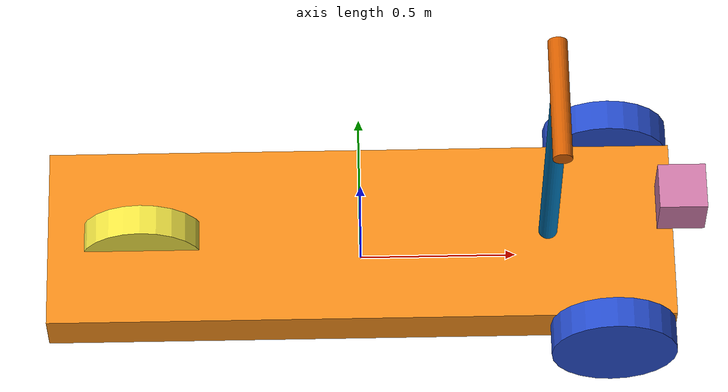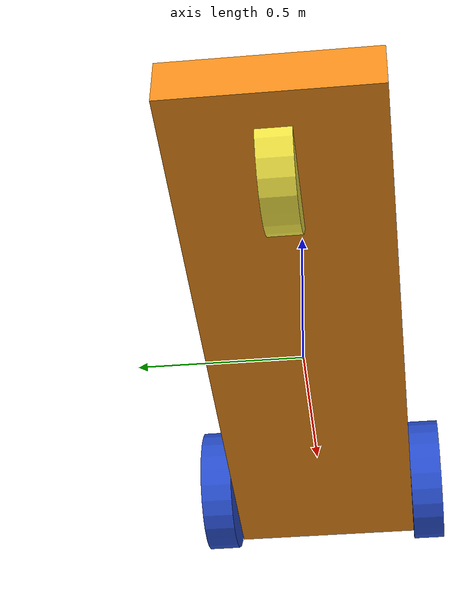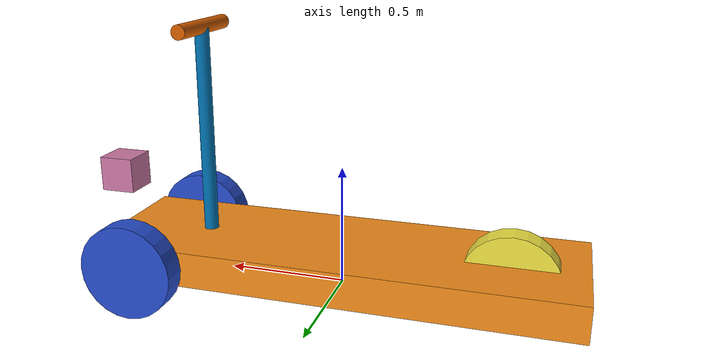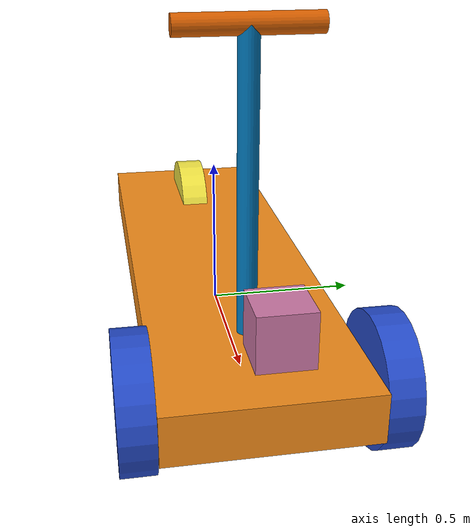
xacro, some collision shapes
<?xml version='1.0'?>

<robot name="myrobot" xmlns:xacro="http://www.ros.org/wiki/xacro">

  <xacro:include filename="$(find mybot_description)/urdf/mybot.gazebo" />
  <xacro:include filename="$(find mybot_description)/urdf/materials.xacro" />
  <xacro:include filename="$(find mybot_description)/urdf/macros.xacro" />

  <link name='chassis'>
    <pose>0 0 0.1 0 0 0</pose>

    <inertial>
      <mass value="30.0"/>
      <origin xyz="0 0 0.1" rpy=" 0 0 0"/>
      <inertia
          ixx="0.1" ixy="0" ixz="0"
          iyy="0.1" iyz="0"
          izz="0.1"
      />
    </inertial>

    <collision name='collision'>
      <geometry>
        <box size="2 0.6 0.15"/>
      </geometry>
    </collision>

    <visual name='chassis_visual'>
      <origin xyz="0 0 0.1" rpy=" 0 0 0"/>
      <geometry>
        <box size="2 0.6 0.15"/>
      </geometry>
    </visual>
  </link>

  <link name="left_wheel">
    <!--origin xyz="0.1 0.13 0.1" rpy="0 1.5707 1.5707"/-->
    <collision name="collision">
      <origin xyz="0 0 0" rpy="0 1.5707 1.5707"/>
      <geometry>
        <cylinder radius="0.2" length="0.1"/>
      </geometry>
    </collision>
    <visual name="left_wheel_visual">
      <origin xyz="0 0 0" rpy="0 1.5707 1.5707"/>
      <geometry>
        <cylinder radius="0.2" length="0.1"/>
      </geometry>
    </visual>
    <inertial>
      <origin xyz="0 0 0" rpy="0 1.5707 1.5707"/>
      <mass value="5"/>
      <inertia
        ixx=".1" ixy="0.0" ixz="0.0"
        iyy=".1" iyz="0.0"
        izz=".1"/>
    </inertial>
  </link>

  <link name="right_wheel">
    <!--origin xyz="0.1 -0.13 0.1" rpy="0 1.5707 1.5707"/-->
    <collision name="collision">
      <origin xyz="0 0 0" rpy="0 1.5707 1.5707"/>
      <geometry>
        <cylinder radius="0.2" length="0.1"/>
      </geometry>
    </collision>
    <visual name="right_wheel_visual">
      <origin xyz="0 0 0" rpy="0 1.5707 1.5707"/>
      <geometry>
        <cylinder radius="0.2" length="0.1"/>
      </geometry>
    </visual>
    <inertial>
      <origin xyz="0 0 0" rpy="0 1.5707 1.5707"/>
      <mass value="5"/>
      <inertia
        ixx=".1" ixy="0.0" ixz="0.0"
        iyy=".1" iyz="0.0"
        izz=".1"/>
    </inertial>
  </link>

<link name="rear_wheel">
    <!--origin xyz="0.1 -0.13 0.1" rpy="0 1.5707 1.5707"/-->
    <collision name="collision">
      <origin xyz="0 0 0" rpy="0 1.5707 1.5707"/>
      <geometry>
        <cylinder radius="0.2" length="0.1"/>
      </geometry>
    </collision>
    <visual name="right_wheel_visual">
      <origin xyz="0 0 0" rpy="0 1.5707 1.5707"/>
      <geometry>
        <cylinder radius="0.2" length="0.1"/>
      </geometry>
    </visual>
    <inertial>
      <origin xyz="0 0 0" rpy="0 1.5707 1.5707"/>
      <mass value="5"/>
      <inertia
        ixx=".1" ixy="0.0" ixz="0.0"
        iyy=".1" iyz="0.0"
        izz=".1"/>
    </inertial>
  </link>

  <joint type="continuous" name="rear_wheel_hinge">
    <origin xyz="-0.7 0 0.1" rpy="0 0 0"/>
    <!--origin xyz="0.1 0.13 0" rpy="0 1.5707 1.5707"/-->
    <child link="rear_wheel"/>
    <parent link="chassis"/>
    <axis xyz="0 1 0" rpy="0 0 0"/>
    <limit effort="10000" velocity="1000"/>
    <joint_properties damping="1.0" friction="1.0"/>
  </joint>

  <joint type="continuous" name="left_wheel_hinge">
    <origin xyz="0.8 0.35 0.1" rpy="0 0 0"/>
    <!--origin xyz="0.1 0.13 0" rpy="0 1.5707 1.5707"/-->
    <child link="left_wheel"/>
    <parent link="chassis"/>
    <axis xyz="0 1 0" rpy="0 0 0"/>
    <limit effort="10000" velocity="1000"/>
    <joint_properties damping="1.0" friction="1.0"/>
  </joint>

  <joint type="continuous" name="right_wheel_hinge">
    <origin xyz="0.8 -0.35 0.1" rpy="0 0 0"/>
    <!--origin xyz="0.1 -0.13 0" rpy="0 1.5707 1.5707"/-->
    <child link="right_wheel"/>
    <parent link="chassis"/>
    <axis xyz="0 1 0" rpy="0 0 0"/>
    <limit effort="10000" velocity="1000"/>
    <joint_properties damping="1.0" friction="1.0"/>
  </joint>

<link name="stem">
    <!--origin xyz="0.1 -0.13 0.1" rpy="0 1.5707 1.5707"/-->
    <collision name="stem_">
      <origin xyz="0 0 0" rpy="0 0 0"/>
      <geometry>
        <cylinder radius="0.03" length="1"/>
      </geometry>
    </collision>
    <visual name="stem_visual">
      <origin xyz="0 0 0" rpy="0 0 0"/>
      <geometry>
        <cylinder radius="0.03" length="1"/>
      </geometry>
    </visual>
    <inertial>
      <origin xyz="0 0 0" rpy="0 0 0"/>
      <mass value="5"/>
      <inertia
        ixx=".1" ixy="0.0" ixz="0.0"
        iyy=".1" iyz="0.0"
        izz=".1"/>
    </inertial>
  </link>

  <joint type="fixed" name="stem_hinge">
    <origin xyz="0.6 0 0.55" rpy="0 0 0"/>
    <!--origin xyz="0.1 0.13 0" rpy="0 1.5707 1.5707"/-->
    <child link="stem"/>
    <parent link="chassis"/>
    <axis xyz="0 1 0" rpy="0 0 0"/>
    <limit effort="10000" velocity="1000"/>
    <joint_properties damping="1.0" friction="1.0"/>
  </joint>

<link name="handle">
    <!--origin xyz="0.1 -0.13 0.1" rpy="0 1.5707 1.5707"/-->
    <collision name="handlestem_">
      <origin xyz="0 0 0" rpy="0 1.5707 1.5707"/>
      <geometry>
        <cylinder radius="0.03" length="0.4"/>
      </geometry>
    </collision>
    <visual name="stem_visual">
      <origin xyz="0 0 0" rpy="0 1.5707 1.5707"/>
      <geometry>
        <cylinder radius="0.03" length="0.4"/>
      </geometry>
    </visual>
    <inertial>
      <origin xyz="0 0 0" rpy="0 1.5707 1.5707"/>
      <mass value="5"/>
      <inertia
        ixx=".1" ixy="0.0" ixz="0.0"
        iyy=".1" iyz="0.0"
        izz=".1"/>
    </inertial>
  </link>

  <joint type="fixed" name="handle_hinge">
    <origin xyz="0 0 0.5" rpy="1.5707 1.5707 1.5707"/>
    <!--origin xyz="0.1 0.13 0" rpy="0 1.5707 1.5707"/-->
    <child link="handle"/>
    <parent link="stem"/>
    <axis xyz="0 1 0" rpy="0 0 0"/>
    <limit effort="10000" velocity="1000"/>
    <joint_properties damping="1.0" friction="1.0"/>
  </joint>

  <joint name="hokuyo_joint" type="fixed">
    <axis xyz="0 1 0" />
    <origin xyz="1.01 0 0.3" rpy="0 0 0"/>
    <parent link="chassis"/>
    <child link="hokuyo"/>
  </joint>

  <!-- Hokuyo Laser -->
  <link name="hokuyo">
    <collision>
      <origin xyz="0 0 0.1" rpy="0 0 0"/>
      <geometry>
    <box size="0.15 0.15 0.15"/>
      </geometry>
    </collision>

    <visual>
      <origin xyz="0 0 .1" rpy="0 0 0"/>
      <geometry>
        <mesh filename="package://mybot_description/meshes/hokuyo.dae"/>
      </geometry>
    </visual>

    <inertial>
      <mass value="1e-5" />
      <origin xyz="0 0 0.1" rpy="0 0 0"/>
      <inertia ixx="1e-6" ixy="0" ixz="0" iyy="1e-6" iyz="0" izz="1e-6" />
    </inertial>
  </link>

</robot>
